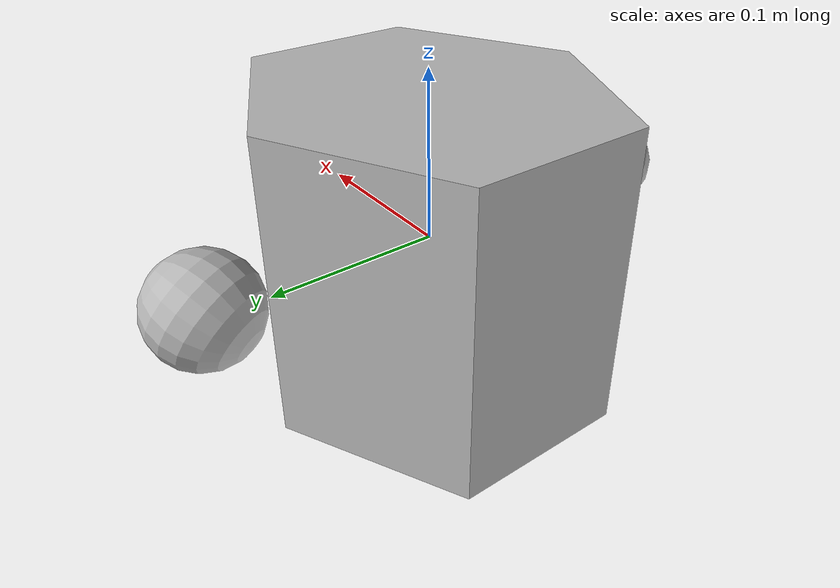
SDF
<?xml version='1.0'?>
<sdf version='1.4'>
  <model name="robot_soccer_01">

  <static>false</static>

    <link name='chassis'>
      <pose>0 0 0 0 0 0</pose>
      <collision name='collision'>
        <geometry>
          <mesh>
            <uri>./hex.dae</uri>
          </mesh>
        </geometry>
      </collision>

      <visual name='visual'>
        <geometry>
          <mesh>
            <uri>./hex.dae</uri>
          </mesh>
        </geometry>
      </visual>

    </link>

    <link name='right_wheel'>
      <pose>-.05 .07 -.038618 0 1.5707 -1.1</pose>
      <collision name="right_wheel_caster_collision">
      <geometry>
        <sphere>
          <radius>.03</radius>
        </sphere>
      </geometry>

      <surface>
        <friction>
          <ode>
            <mu>0</mu>
            <mu2>0</mu2>
            <slip1>1.0</slip1>
            <slip2>1.0</slip2>
          </ode>
        </friction>
      </surface>
    </collision>

    <visual name="right_wheel_visual">
      <pose>-.05 .07 -.038618 0 1.5707 -1.1</pose>
      <geometry>
        <sphere>
          <radius>.03</radius>
        </sphere>
      </geometry>
    </visual>

    </link>

    <link name='left_wheel'>
      <pose>-.05 -.07 -.038618 0 1.5707 1.1</pose>
      <collision name="left_wheel_caster_collision">
      <geometry>
        <sphere>
          <radius>.03</radius>
        </sphere>
      </geometry>

      <surface>
        <friction>
          <ode>
            <mu>0</mu>
            <mu2>0</mu2>
            <slip1>1.0</slip1>
            <slip2>1.0</slip2>
          </ode>
        </friction>
      </surface>
    </collision>

    <visual name="left_wheel_visual">
      <pose>-.05 -.07 -.038618 0 1.5707 1.1</pose>
      <geometry>
        <sphere>
          <radius>.03</radius>
        </sphere>
      </geometry>
    </visual>
    </link>

    <link name='back_wheel'>
      <pose>.1 0 -.038618 0 1.5707 0</pose>
      <collision name="back_wheel_caster_collision">
      <geometry>
        <sphere>
          <radius>.03</radius>
        </sphere>
      </geometry>

      <surface>
        <friction>
          <ode>
            <mu>0</mu>
            <mu2>0</mu2>
            <slip1>1.0</slip1>
            <slip2>1.0</slip2>
          </ode>
        </friction>
      </surface>
    </collision>

    <visual name="back_wheel_visual">
      <pose>.1 0 -.038618 0 1.5707 0</pose>
      <geometry>
        <sphere>
          <radius>.03</radius>
        </sphere>
      </geometry>
    </visual>
    </link>

  <joint type="revolute2" name="left_wheel_hinge">
    <pose>-.05 -.07 -.038618 -1.1 1.5707 0</pose>
    <child>left_wheel</child>
    <parent>chassis</parent>
    <axis>
      <xyz>1 1 0</xyz>
    </axis>
  </joint>

  <joint type="revolute2" name="right_wheel_hinge">
    <pose>-.05 .07 -.038618 1.1 1.5707 0</pose>
    <child>right_wheel</child>
    <parent>chassis</parent>
    <axis>
      <xyz>1 1 0</xyz>
    </axis>
  </joint>

  <joint type="revolute2" name="back_wheel_hinge">
    <pose>.1 0 0 0 1.5707 0</pose>
    <child>back_wheel</child>
    <parent>chassis</parent>
    <axis>
      <xyz>1 1 0</xyz>
    </axis>
  </joint>

  </model>
</sdf>
